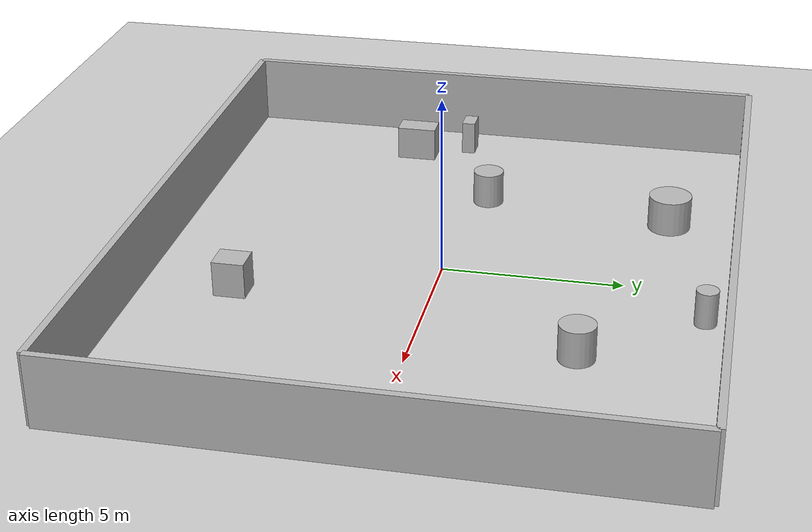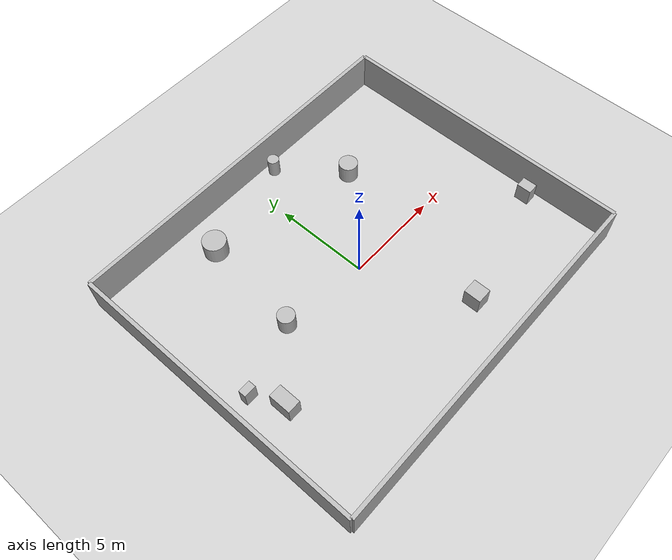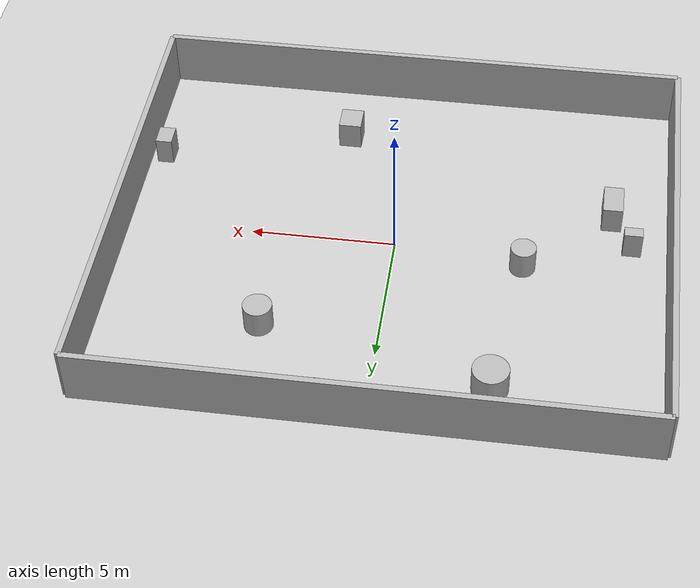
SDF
<?xml version="1.0"?>
<sdf version="1.6">
  <world name="env_72">

    <include><uri>model://ground_plane</uri></include>
    <include><uri>model://sun</uri></include>

    <!-- WALLS -->
    <model name="wall_north"><static>true</static><pose>0 7.897446748358192 1 0 0 0</pose>
      <link name="link"><collision name="collision">
        <geometry><box><size>18.930235256332004 0.2 2</size></box></geometry>
      </collision><visual name="visual">
        <geometry><box><size>18.930235256332004 0.2 2</size></box></geometry>
      </visual></link>
    </model>

    <model name="wall_south"><static>true</static><pose>0 -7.897446748358192 1 0 0 0</pose>
      <link name="link"><collision name="collision">
        <geometry><box><size>18.930235256332004 0.2 2</size></box></geometry>
      </collision><visual name="visual">
        <geometry><box><size>18.930235256332004 0.2 2</size></box></geometry>
      </visual></link>
    </model>

    <model name="wall_east"><static>true</static><pose>9.465117628166002 0 1 0 0 1.57</pose>
      <link name="link"><collision name="collision">
        <geometry><box><size>15.794893496716384 0.2 2</size></box></geometry>
      </collision><visual name="visual">
        <geometry><box><size>15.794893496716384 0.2 2</size></box></geometry>
      </visual></link>
    </model>

    <model name="wall_west"><static>true</static><pose>-9.465117628166002 0 1 0 0 1.57</pose>
      <link name="link"><collision name="collision">
        <geometry><box><size>15.794893496716384 0.2 2</size></box></geometry>
      </collision><visual name="visual">
        <geometry><box><size>15.794893496716384 0.2 2</size></box></geometry>
      </visual></link>
    </model>

    <!-- SENSOR -->

    <model name="lidar_sensor">
      <static>true</static>
      <pose>5.419695840512302 4.824463875170611 0.4 0 0 0</pose>
      <link name="link">
        <sensor name="lidar" type="ray">
          <pose>0 0 0 0 0 0</pose>
          <visualize>true</visualize>
          <always_on>true</always_on>
          <update_rate>10</update_rate>
          <ray>
            <scan><horizontal>
              <samples>180</samples>
              <resolution>1</resolution>
              <min_angle>-3.14159</min_angle>
              <max_angle>3.14159</max_angle>
            </horizontal></scan>
            <range><min>0.15</min><max>20.0</max><resolution>0.01</resolution></range>
          </ray>
          <plugin name="lidar_plugin" filename="liblidar_plugin.so"/>
        </sensor>
      </link>
    </model>

    <!-- OBSTACLES -->

    <model name="obstacle_0">
      <static>true</static>
      <pose>-3.8234045359678532 5.937558965662884 0.5 0 0 0</pose>
      <link name="link">
        <collision name="collision">
          <geometry><cylinder><radius>0.61</radius><length>1.0</length></cylinder></geometry>
        </collision>
        <visual name="visual">
          <geometry><cylinder><radius>0.61</radius><length>1.0</length></cylinder></geometry>
        </visual>
      </link>
    </model>

    <model name="obstacle_1">
      <static>true</static>
      <pose>3.9733406210577478 4.218752075341914 0.5 0 0 0</pose>
      <link name="link">
        <collision name="collision">
          <geometry><cylinder><radius>0.49</radius><length>1.0</length></cylinder></geometry>
        </collision>
        <visual name="visual">
          <geometry><cylinder><radius>0.49</radius><length>1.0</length></cylinder></geometry>
        </visual>
      </link>
    </model>

    <model name="obstacle_2">
      <static>true</static>
      <pose>2.2700598264774907 -5.268784568076699 0.5 0 0 0</pose>
      <link name="link">
        <collision name="collision">
          <geometry><box><size>0.8 0.89 1.0</size></box></geometry>
        </collision>
        <visual name="visual">
          <geometry><box><size>0.8 0.89 1.0</size></box></geometry>
        </visual>
      </link>
    </model>

    <model name="obstacle_3">
      <static>true</static>
      <pose>1.6074933372042963 7.286557226816166 0.5 0 0 0</pose>
      <link name="link">
        <collision name="collision">
          <geometry><cylinder><radius>0.3</radius><length>1.0</length></cylinder></geometry>
        </collision>
        <visual name="visual">
          <geometry><cylinder><radius>0.3</radius><length>1.0</length></cylinder></geometry>
        </visual>
      </link>
    </model>

    <model name="obstacle_4">
      <static>true</static>
      <pose>-4.4630669185285985 0.5230373295868525 0.5 0 0 0</pose>
      <link name="link">
        <collision name="collision">
          <geometry><cylinder><radius>0.44</radius><length>1.0</length></cylinder></geometry>
        </collision>
        <visual name="visual">
          <geometry><cylinder><radius>0.44</radius><length>1.0</length></cylinder></geometry>
        </visual>
      </link>
    </model>

    <model name="obstacle_5">
      <static>true</static>
      <pose>-7.406777247328863 -2.2276452860326437 0.5 0 0 0</pose>
      <link name="link">
        <collision name="collision">
          <geometry><box><size>0.69 1.17 1.0</size></box></geometry>
        </collision>
        <visual name="visual">
          <geometry><box><size>0.69 1.17 1.0</size></box></geometry>
        </visual>
      </link>
    </model>

    <model name="obstacle_6">
      <static>true</static>
      <pose>-8.143696641607725 -0.7035867002820124 0.5 0 0 0</pose>
      <link name="link">
        <collision name="collision">
          <geometry><box><size>0.64 0.4 1.0</size></box></geometry>
        </collision>
        <visual name="visual">
          <geometry><box><size>0.64 0.4 1.0</size></box></geometry>
        </visual>
      </link>
    </model>

    <model name="obstacle_7">
      <static>true</static>
      <pose>8.819958136417672 -3.4994496955698384 0.5 0 0 0</pose>
      <link name="link">
        <collision name="collision">
          <geometry><box><size>0.58 0.76 1.0</size></box></geometry>
        </collision>
        <visual name="visual">
          <geometry><box><size>0.58 0.76 1.0</size></box></geometry>
        </visual>
      </link>
    </model>

  </world>
</sdf>
